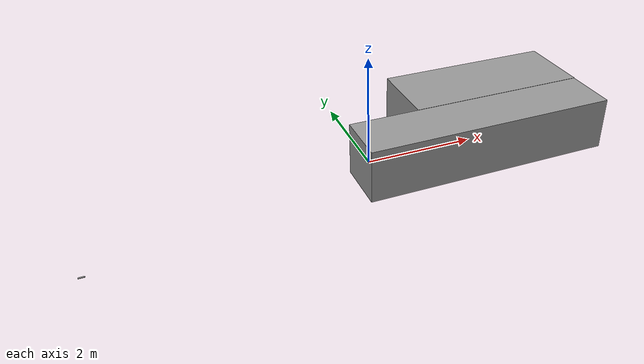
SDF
<?xml version='1.0'?>
<sdf version='1.6'>
  <model name='hospital_restricted'>
    <link name='link_0'>
      <inertial>
        <mass>4.80663</mass>
        <inertia>
          <ixx>0.808906</ixx>
          <ixy>0</ixy>
          <ixz>0</ixz>
          <iyy>9.47803</iyy>
          <iyz>0</iyz>
          <izz>9.48583</izz>
        </inertia>
        <pose frame=''>0 0 0 0 -0 0</pose>
      </inertial>
      <pose frame=''>2.13081 -0.212377 0.166667 0 -0 0</pose>
      <visual name='visual'>
        <pose frame=''>0 0 0 0 -0 0</pose>
        <geometry>
          <box>
            <size>4.7605 1.00969 1</size>
          </box>
        </geometry>
        <material>
          <lighting>1</lighting>
          <script>
            <uri>file://media/materials/scripts/gazebo.material</uri>
            <name>Gazebo/Grey</name>
          </script>
        </material>
        <transparency>0</transparency>
        <cast_shadows>1</cast_shadows>
      </visual>
      <collision name='collision'>
        <laser_retro>0</laser_retro>
        <max_contacts>10</max_contacts>
        <pose frame=''>0 0 0 0 -0 0</pose>
        <geometry>
          <box>
            <size>4.7605 1.00969 1</size>
          </box>
        </geometry>
        <surface>
          <friction>
            <ode>
              <mu>1</mu>
              <mu2>1</mu2>
              <fdir1>0 0 0</fdir1>
              <slip1>0</slip1>
              <slip2>0</slip2>
            </ode>
            <torsional>
              <coefficient>1</coefficient>
              <patch_radius>0</patch_radius>
              <surface_radius>0</surface_radius>
              <use_patch_radius>1</use_patch_radius>
              <ode>
                <slip>0</slip>
              </ode>
            </torsional>
          </friction>
          <bounce>
            <restitution_coefficient>0</restitution_coefficient>
            <threshold>1e+06</threshold>
          </bounce>
          <contact>
            <collide_without_contact>0</collide_without_contact>
            <collide_without_contact_bitmask>1</collide_without_contact_bitmask>
            <collide_bitmask>1</collide_bitmask>
            <ode>
              <soft_cfm>0</soft_cfm>
              <soft_erp>0.2</soft_erp>
              <kp>1e+13</kp>
              <kd>1</kd>
              <max_vel>0.01</max_vel>
              <min_depth>0</min_depth>
            </ode>
            <bullet>
              <split_impulse>1</split_impulse>
              <split_impulse_penetration_threshold>-0.01</split_impulse_penetration_threshold>
              <soft_cfm>0</soft_cfm>
              <soft_erp>0.2</soft_erp>
              <kp>1e+13</kp>
              <kd>1</kd>
            </bullet>
          </contact>
        </surface>
      </collision>
    </link>
    <link name='link_1'>
      <inertial>
        <mass>4.80655</mass>
        <inertia>
          <ixx>1.18748</ixx>
          <ixy>0</ixy>
          <ixz>0</ixz>
          <iyy>5.11055</iyy>
          <iyz>0</iyz>
          <izz>5.49694</izz>
        </inertia>
        <pose frame=''>0 0 0 0 -0 0</pose>
      </inertial>
      <pose frame=''>2.80778 1.00043 0.166667 0 -0 0</pose>
      <visual name='visual'>
        <pose frame=''>0 0 0 0 -0 0</pose>
        <geometry>
          <box>
            <size>3.42914 1.40166 1</size>
          </box>
        </geometry>
        <material>
          <lighting>1</lighting>
          <script>
            <uri>file://media/materials/scripts/gazebo.material</uri>
            <name>Gazebo/Grey</name>
          </script>
        </material>
        <transparency>0</transparency>
        <cast_shadows>1</cast_shadows>
      </visual>
      <collision name='collision'>
        <laser_retro>0</laser_retro>
        <max_contacts>10</max_contacts>
        <pose frame=''>0 0 0 0 -0 0</pose>
        <geometry>
          <box>
            <size>3.42914 1.40166 1</size>
          </box>
        </geometry>
        <surface>
          <friction>
            <ode>
              <mu>1</mu>
              <mu2>1</mu2>
              <fdir1>0 0 0</fdir1>
              <slip1>0</slip1>
              <slip2>0</slip2>
            </ode>
            <torsional>
              <coefficient>1</coefficient>
              <patch_radius>0</patch_radius>
              <surface_radius>0</surface_radius>
              <use_patch_radius>1</use_patch_radius>
              <ode>
                <slip>0</slip>
              </ode>
            </torsional>
          </friction>
          <bounce>
            <restitution_coefficient>0</restitution_coefficient>
            <threshold>1e+06</threshold>
          </bounce>
          <contact>
            <collide_without_contact>0</collide_without_contact>
            <collide_without_contact_bitmask>1</collide_without_contact_bitmask>
            <collide_bitmask>1</collide_bitmask>
            <ode>
              <soft_cfm>0</soft_cfm>
              <soft_erp>0.2</soft_erp>
              <kp>1e+13</kp>
              <kd>1</kd>
              <max_vel>0.01</max_vel>
              <min_depth>0</min_depth>
            </ode>
            <bullet>
              <split_impulse>1</split_impulse>
              <split_impulse_penetration_threshold>-0.01</split_impulse_penetration_threshold>
              <soft_cfm>0</soft_cfm>
              <soft_erp>0.2</soft_erp>
              <kp>1e+13</kp>
              <kd>1</kd>
            </bullet>
          </contact>
        </surface>
      </collision>
    </link>
    <model name='stone_10_2_5_1cm'>
      <link name='link'>
        <pose frame=''>0 0 0.005 0 -0 0</pose>
        <inertial>
          <mass>0.0628</mass>
          <inertia>
            <ixx>3.79417e-06</ixx>
            <ixy>0</ixy>
            <ixz>0</ixz>
            <iyy>5.28567e-05</iyy>
            <iyz>0</iyz>
            <izz>5.56042e-05</izz>
          </inertia>
        </inertial>
        <collision name='collision'>
          <geometry>
            <box>
              <size>0.1 0.025 0.01</size>
            </box>
          </geometry>
          <surface>
            <contact>
              <poissons_ratio>0.15</poissons_ratio>
              <elastic_modulus>8e+10</elastic_modulus>
              <ode>
                <kp>100000</kp>
                <kd>100</kd>
                <max_vel>100</max_vel>
                <min_depth>0.001</min_depth>
              </ode>
            </contact>
            <friction>
              <torsional>
                <coefficient>1</coefficient>
                <use_patch_radius>0</use_patch_radius>
                <surface_radius>0.01</surface_radius>
              </torsional>
            </friction>
          </surface>
        </collision>
        <visual name='visual'>
          <geometry>
            <box>
              <size>0.1 0.025 0.01</size>
            </box>
          </geometry>
          <material>
            <script>
              <uri>file://media/materials/scripts/gazebo.material</uri>
              <name>Gazebo/Grey</name>
            </script>
          </material>
        </visual>
      </link>
      <pose frame=''>-4.93858 -0.788057 -0.333333 0 -0 0</pose>
    </model>
    <static>0</static>
    <allow_auto_disable>1</allow_auto_disable>
  </model>
</sdf>
